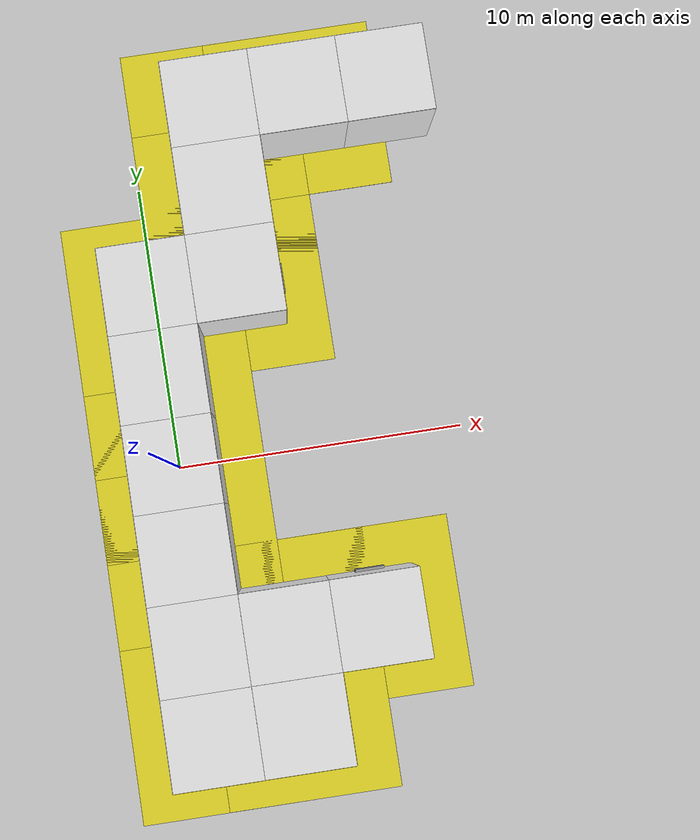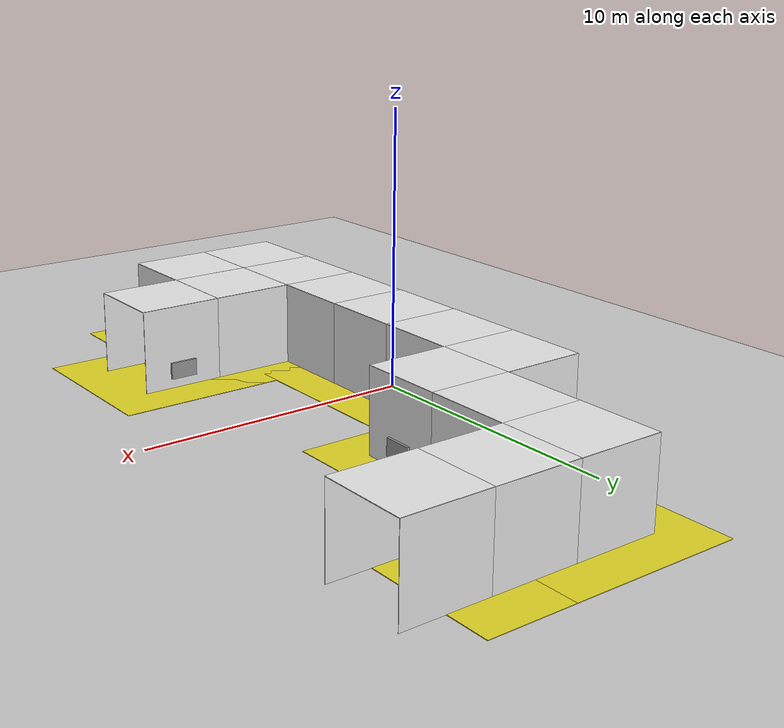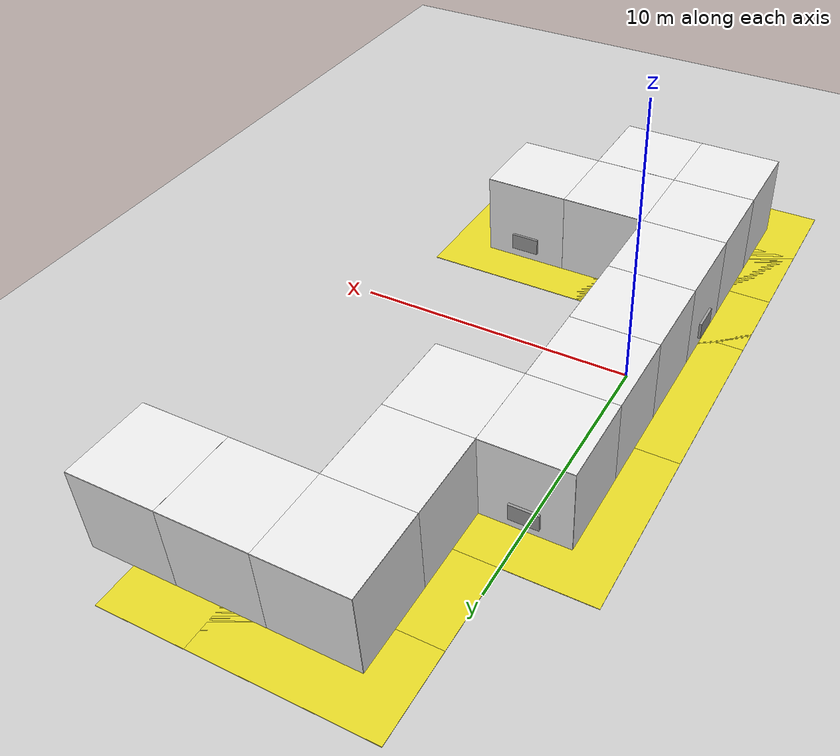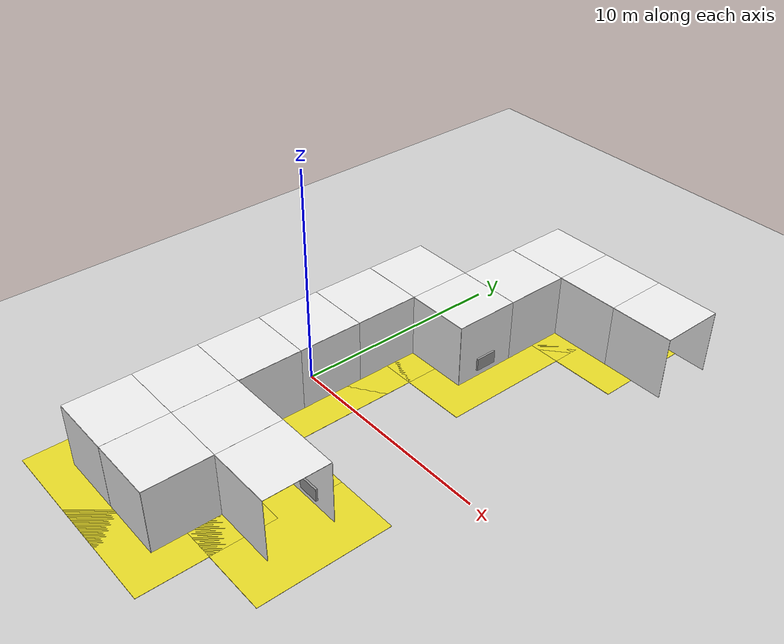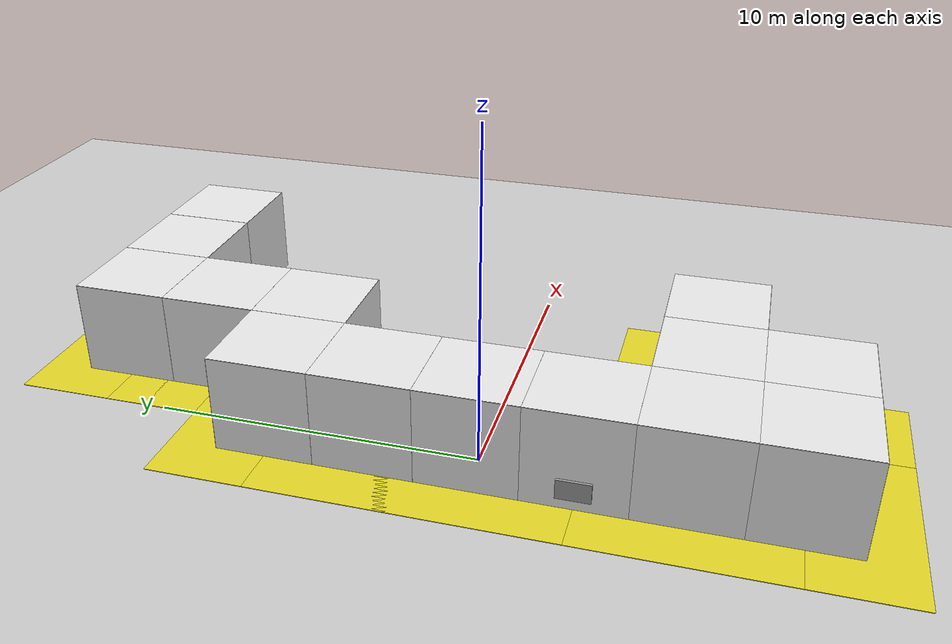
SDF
<sdf version="1.6">
 <world name="default">
  <model name="ground_plane">
   <static>1</static>
   <link name="link">
    <collision name="collision">
     <geometry><plane><normal>0 0 1</normal><size>200 200</size></plane></geometry>
     <surface><friction><ode><mu>100</mu><mu2>50</mu2></ode></friction></surface>
    </collision>
    <visual name="visual">
     <cast_shadows>0</cast_shadows>
     <geometry><plane><normal>0 0 1</normal><size>200 200</size></plane></geometry>
     <material>
      <script><uri>file://media/materials/scripts/gazebo.material</uri><name>Gazebo/Grey</name></script>
     </material>
    </visual>
   </link>
  </model>
  <model name="wall_back_0_0_0_0">
   <static>1</static>
   <pose>0.0 -1.5 1.5 0.0 0.0 0.0</pose>
   <link name="link">
    <collision name="collision"><geometry><box><size>3 0.02 3</size></box></geometry></collision>
    <visual name="visual">
     <material>
      <script><name>Gazebo/White</name><uri>file://media/materials/scripts/gazebo.material</uri></script>
     </material>
     <geometry><box><size>3 0.02 3</size></box></geometry>
    </visual>
   </link>
  </model>
  <model name="wall_right_0_0_0_0">
   <static>1</static>
   <pose>1.5 0.0 1.5 0.0 0.0 1.57</pose>
   <link name="link">
    <collision name="collision"><geometry><box><size>3 0.02 3</size></box></geometry></collision>
    <visual name="visual">
     <material>
      <script><name>Gazebo/White</name><uri>file://media/materials/scripts/gazebo.material</uri></script>
     </material>
     <geometry><box><size>3 0.02 3</size></box></geometry>
    </visual>
   </link>
  </model>
  <model name="wall_left_0_0_0_0">
   <static>1</static>
   <pose>-1.5 0.0 1.5 0.0 0.0 1.57</pose>
   <link name="link">
    <collision name="collision"><geometry><box><size>3 0.02 3</size></box></geometry></collision>
    <visual name="visual">
     <material>
      <script><name>Gazebo/White</name><uri>file://media/materials/scripts/gazebo.material</uri></script>
     </material>
     <geometry><box><size>3 0.02 3</size></box></geometry>
    </visual>
   </link>
  </model>
  <model name="wall_top_0_0_0_0">
   <static>1</static>
   <pose>0.0 0.0 3.0 1.57 0.0 0.0</pose>
   <link name="link">
    <collision name="collision"><geometry><box><size>3 0.02 3</size></box></geometry></collision>
    <visual name="visual">
     <material>
      <script><name>Gazebo/White</name><uri>file://media/materials/scripts/gazebo.material</uri></script>
     </material>
     <geometry><box><size>3 0.02 3</size></box></geometry>
    </visual>
   </link>
  </model>
  <model name="wall_bottom_0_0_0_0">
   <static>1</static>
   <link name="link">
    <collision name="collision"><geometry><box><size>6 6 0.02</size></box></geometry></collision>
    <visual name="visual">
     <material>
      <script><name>Gazebo/Yellow</name><uri>file://media/materials/scripts/gazebo.material</uri></script>
     </material>
     <geometry><box><size>6 6 0.02</size></box></geometry>
    </visual>
   </link>
  </model>
  <model name="wall_right_0_1_0_1">
   <static>1</static>
   <pose>1.5 3.0 1.5 0.0 0.0 1.57</pose>
   <link name="link">
    <collision name="collision"><geometry><box><size>3 0.02 3</size></box></geometry></collision>
    <visual name="visual">
     <material>
      <script><name>Gazebo/White</name><uri>file://media/materials/scripts/gazebo.material</uri></script>
     </material>
     <geometry><box><size>3 0.02 3</size></box></geometry>
    </visual>
   </link>
  </model>
  <model name="wall_left_0_1_0_1">
   <static>1</static>
   <pose>-1.5 3.0 1.5 0.0 0.0 1.57</pose>
   <link name="link">
    <collision name="collision"><geometry><box><size>3 0.02 3</size></box></geometry></collision>
    <visual name="visual">
     <material>
      <script><name>Gazebo/White</name><uri>file://media/materials/scripts/gazebo.material</uri></script>
     </material>
     <geometry><box><size>3 0.02 3</size></box></geometry>
    </visual>
   </link>
  </model>
  <model name="wall_top_0_1_0_1">
   <static>1</static>
   <pose>0.0 3.0 3.0 1.57 0.0 0.0</pose>
   <link name="link">
    <collision name="collision"><geometry><box><size>3 0.02 3</size></box></geometry></collision>
    <visual name="visual">
     <material>
      <script><name>Gazebo/White</name><uri>file://media/materials/scripts/gazebo.material</uri></script>
     </material>
     <geometry><box><size>3 0.02 3</size></box></geometry>
    </visual>
   </link>
  </model>
  <model name="wall_bottom_0_1_0_1">
   <static>1</static>
   <pose>0.0 3.0 0.0 0.0 0.0 0.0</pose>
   <link name="link">
    <collision name="collision"><geometry><box><size>6 6 0.02</size></box></geometry></collision>
    <visual name="visual">
     <material>
      <script><name>Gazebo/Yellow</name><uri>file://media/materials/scripts/gazebo.material</uri></script>
     </material>
     <geometry><box><size>6 6 0.02</size></box></geometry>
    </visual>
   </link>
  </model>
  <model name="wall_front_0_2_0_2">
   <static>1</static>
   <pose>0.0 7.5 1.5 0.0 0.0 0.0</pose>
   <link name="link">
    <collision name="collision"><geometry><box><size>3 0.02 3</size></box></geometry></collision>
    <visual name="visual">
     <material>
      <script><name>Gazebo/White</name><uri>file://media/materials/scripts/gazebo.material</uri></script>
     </material>
     <geometry><box><size>3 0.02 3</size></box></geometry>
    </visual>
   </link>
  </model>
  <model name="wall_left_0_2_0_2">
   <static>1</static>
   <pose>-1.5 6.0 1.5 0.0 0.0 1.57</pose>
   <link name="link">
    <collision name="collision"><geometry><box><size>3 0.02 3</size></box></geometry></collision>
    <visual name="visual">
     <material>
      <script><name>Gazebo/White</name><uri>file://media/materials/scripts/gazebo.material</uri></script>
     </material>
     <geometry><box><size>3 0.02 3</size></box></geometry>
    </visual>
   </link>
  </model>
  <model name="wall_top_0_2_0_2">
   <static>1</static>
   <pose>0.0 6.0 3.0 1.57 0.0 0.0</pose>
   <link name="link">
    <collision name="collision"><geometry><box><size>3 0.02 3</size></box></geometry></collision>
    <visual name="visual">
     <material>
      <script><name>Gazebo/White</name><uri>file://media/materials/scripts/gazebo.material</uri></script>
     </material>
     <geometry><box><size>3 0.02 3</size></box></geometry>
    </visual>
   </link>
  </model>
  <model name="wall_bottom_0_2_0_2">
   <static>1</static>
   <pose>0.0 6.0 0.0 0.0 0.0 0.0</pose>
   <link name="link">
    <collision name="collision"><geometry><box><size>6 6 0.02</size></box></geometry></collision>
    <visual name="visual">
     <material>
      <script><name>Gazebo/Yellow</name><uri>file://media/materials/scripts/gazebo.material</uri></script>
     </material>
     <geometry><box><size>6 6 0.02</size></box></geometry>
    </visual>
   </link>
  </model>
  <model name="panel_0_2_0_2">
   <static>1</static>
   <pose>0.0 7.5 0.66 0.0 0.0 1.57</pose>
   <link name="link">
    <collision name="collision"><geometry><box><size>0.2 1 0.6</size></box></geometry></collision>
    <visual name="visual">
     <material>
      <script><name>Gazebo/Grey</name><uri>file://media/materials/scripts/gazebo.material</uri></script>
     </material>
     <geometry><box><size>0.2 1 0.6</size></box></geometry>
    </visual>
   </link>
  </model>
  <model name="wall_front_1_2_0_3">
   <static>1</static>
   <pose>4.5 6.0 1.5 0.0 0.0 -1.57</pose>
   <link name="link">
    <collision name="collision"><geometry><box><size>3 0.02 3</size></box></geometry></collision>
    <visual name="visual">
     <material>
      <script><name>Gazebo/White</name><uri>file://media/materials/scripts/gazebo.material</uri></script>
     </material>
     <geometry><box><size>3 0.02 3</size></box></geometry>
    </visual>
   </link>
  </model>
  <model name="wall_right_1_2_0_3">
   <static>1</static>
   <pose>3.0 4.5 1.5 0.0 0.0 0.0</pose>
   <link name="link">
    <collision name="collision"><geometry><box><size>3 0.02 3</size></box></geometry></collision>
    <visual name="visual">
     <material>
      <script><name>Gazebo/White</name><uri>file://media/materials/scripts/gazebo.material</uri></script>
     </material>
     <geometry><box><size>3 0.02 3</size></box></geometry>
    </visual>
   </link>
  </model>
  <model name="wall_top_1_2_0_3">
   <static>1</static>
   <pose>3.0 6.0 3.0 1.57 0.0 -1.57</pose>
   <link name="link">
    <collision name="collision"><geometry><box><size>3 0.02 3</size></box></geometry></collision>
    <visual name="visual">
     <material>
      <script><name>Gazebo/White</name><uri>file://media/materials/scripts/gazebo.material</uri></script>
     </material>
     <geometry><box><size>3 0.02 3</size></box></geometry>
    </visual>
   </link>
  </model>
  <model name="wall_bottom_1_2_0_3">
   <static>1</static>
   <pose>3.0 6.0 0.0 0.0 0.0 -1.57</pose>
   <link name="link">
    <collision name="collision"><geometry><box><size>6 6 0.02</size></box></geometry></collision>
    <visual name="visual">
     <material>
      <script><name>Gazebo/Yellow</name><uri>file://media/materials/scripts/gazebo.material</uri></script>
     </material>
     <geometry><box><size>6 6 0.02</size></box></geometry>
    </visual>
   </link>
  </model>
  <model name="panel_1_2_0_3">
   <static>1</static>
   <pose>4.5 6.0 0.66 0.0 0.0 0.0</pose>
   <link name="link">
    <collision name="collision"><geometry><box><size>0.2 1 0.6</size></box></geometry></collision>
    <visual name="visual">
     <material>
      <script><name>Gazebo/Grey</name><uri>file://media/materials/scripts/gazebo.material</uri></script>
     </material>
     <geometry><box><size>0.2 1 0.6</size></box></geometry>
    </visual>
   </link>
  </model>
  <model name="wall_right_1_3_0_1">
   <static>1</static>
   <pose>4.5 9.0 1.5 0.0 0.0 1.57</pose>
   <link name="link">
    <collision name="collision"><geometry><box><size>3 0.02 3</size></box></geometry></collision>
    <visual name="visual">
     <material>
      <script><name>Gazebo/White</name><uri>file://media/materials/scripts/gazebo.material</uri></script>
     </material>
     <geometry><box><size>3 0.02 3</size></box></geometry>
    </visual>
   </link>
  </model>
  <model name="wall_left_1_3_0_1">
   <static>1</static>
   <pose>1.5 9.0 1.5 0.0 0.0 1.57</pose>
   <link name="link">
    <collision name="collision"><geometry><box><size>3 0.02 3</size></box></geometry></collision>
    <visual name="visual">
     <material>
      <script><name>Gazebo/White</name><uri>file://media/materials/scripts/gazebo.material</uri></script>
     </material>
     <geometry><box><size>3 0.02 3</size></box></geometry>
    </visual>
   </link>
  </model>
  <model name="wall_top_1_3_0_1">
   <static>1</static>
   <pose>3.0 9.0 3.0 1.57 0.0 0.0</pose>
   <link name="link">
    <collision name="collision"><geometry><box><size>3 0.02 3</size></box></geometry></collision>
    <visual name="visual">
     <material>
      <script><name>Gazebo/White</name><uri>file://media/materials/scripts/gazebo.material</uri></script>
     </material>
     <geometry><box><size>3 0.02 3</size></box></geometry>
    </visual>
   </link>
  </model>
  <model name="wall_bottom_1_3_0_1">
   <static>1</static>
   <pose>3.0 9.0 0.0 0.0 0.0 0.0</pose>
   <link name="link">
    <collision name="collision"><geometry><box><size>6 6 0.02</size></box></geometry></collision>
    <visual name="visual">
     <material>
      <script><name>Gazebo/Yellow</name><uri>file://media/materials/scripts/gazebo.material</uri></script>
     </material>
     <geometry><box><size>6 6 0.02</size></box></geometry>
    </visual>
   </link>
  </model>
  <model name="wall_front_1_4_0_2">
   <static>1</static>
   <pose>3.0 13.5 1.5 0.0 0.0 0.0</pose>
   <link name="link">
    <collision name="collision"><geometry><box><size>3 0.02 3</size></box></geometry></collision>
    <visual name="visual">
     <material>
      <script><name>Gazebo/White</name><uri>file://media/materials/scripts/gazebo.material</uri></script>
     </material>
     <geometry><box><size>3 0.02 3</size></box></geometry>
    </visual>
   </link>
  </model>
  <model name="wall_left_1_4_0_2">
   <static>1</static>
   <pose>1.5 12.0 1.5 0.0 0.0 1.57</pose>
   <link name="link">
    <collision name="collision"><geometry><box><size>3 0.02 3</size></box></geometry></collision>
    <visual name="visual">
     <material>
      <script><name>Gazebo/White</name><uri>file://media/materials/scripts/gazebo.material</uri></script>
     </material>
     <geometry><box><size>3 0.02 3</size></box></geometry>
    </visual>
   </link>
  </model>
  <model name="wall_top_1_4_0_2">
   <static>1</static>
   <pose>3.0 12.0 3.0 1.57 0.0 0.0</pose>
   <link name="link">
    <collision name="collision"><geometry><box><size>3 0.02 3</size></box></geometry></collision>
    <visual name="visual">
     <material>
      <script><name>Gazebo/White</name><uri>file://media/materials/scripts/gazebo.material</uri></script>
     </material>
     <geometry><box><size>3 0.02 3</size></box></geometry>
    </visual>
   </link>
  </model>
  <model name="wall_bottom_1_4_0_2">
   <static>1</static>
   <pose>3.0 12.0 0.0 0.0 0.0 0.0</pose>
   <link name="link">
    <collision name="collision"><geometry><box><size>6 6 0.02</size></box></geometry></collision>
    <visual name="visual">
     <material>
      <script><name>Gazebo/Yellow</name><uri>file://media/materials/scripts/gazebo.material</uri></script>
     </material>
     <geometry><box><size>6 6 0.02</size></box></geometry>
    </visual>
   </link>
  </model>
  <model name="wall_right_2_4_0_1">
   <static>1</static>
   <pose>6.0 10.5 1.5 0.0 0.0 0.0</pose>
   <link name="link">
    <collision name="collision"><geometry><box><size>3 0.02 3</size></box></geometry></collision>
    <visual name="visual">
     <material>
      <script><name>Gazebo/White</name><uri>file://media/materials/scripts/gazebo.material</uri></script>
     </material>
     <geometry><box><size>3 0.02 3</size></box></geometry>
    </visual>
   </link>
  </model>
  <model name="wall_left_2_4_0_1">
   <static>1</static>
   <pose>6.0 13.5 1.5 0.0 0.0 0.0</pose>
   <link name="link">
    <collision name="collision"><geometry><box><size>3 0.02 3</size></box></geometry></collision>
    <visual name="visual">
     <material>
      <script><name>Gazebo/White</name><uri>file://media/materials/scripts/gazebo.material</uri></script>
     </material>
     <geometry><box><size>3 0.02 3</size></box></geometry>
    </visual>
   </link>
  </model>
  <model name="wall_top_2_4_0_1">
   <static>1</static>
   <pose>6.0 12.0 3.0 1.57 0.0 -1.57</pose>
   <link name="link">
    <collision name="collision"><geometry><box><size>3 0.02 3</size></box></geometry></collision>
    <visual name="visual">
     <material>
      <script><name>Gazebo/White</name><uri>file://media/materials/scripts/gazebo.material</uri></script>
     </material>
     <geometry><box><size>3 0.02 3</size></box></geometry>
    </visual>
   </link>
  </model>
  <model name="wall_bottom_2_4_0_1">
   <static>1</static>
   <pose>6.0 12.0 0.0 0.0 0.0 -1.57</pose>
   <link name="link">
    <collision name="collision"><geometry><box><size>6 6 0.02</size></box></geometry></collision>
    <visual name="visual">
     <material>
      <script><name>Gazebo/Yellow</name><uri>file://media/materials/scripts/gazebo.material</uri></script>
     </material>
     <geometry><box><size>6 6 0.02</size></box></geometry>
    </visual>
   </link>
  </model>
  <model name="wall_right_3_4_0_1">
   <static>1</static>
   <pose>9.0 10.5 1.5 0.0 0.0 0.0</pose>
   <link name="link">
    <collision name="collision"><geometry><box><size>3 0.02 3</size></box></geometry></collision>
    <visual name="visual">
     <material>
      <script><name>Gazebo/White</name><uri>file://media/materials/scripts/gazebo.material</uri></script>
     </material>
     <geometry><box><size>3 0.02 3</size></box></geometry>
    </visual>
   </link>
  </model>
  <model name="wall_left_3_4_0_1">
   <static>1</static>
   <pose>9.0 13.5 1.5 0.0 0.0 0.0</pose>
   <link name="link">
    <collision name="collision"><geometry><box><size>3 0.02 3</size></box></geometry></collision>
    <visual name="visual">
     <material>
      <script><name>Gazebo/White</name><uri>file://media/materials/scripts/gazebo.material</uri></script>
     </material>
     <geometry><box><size>3 0.02 3</size></box></geometry>
    </visual>
   </link>
  </model>
  <model name="wall_top_3_4_0_1">
   <static>1</static>
   <pose>9.0 12.0 3.0 1.57 0.0 -1.57</pose>
   <link name="link">
    <collision name="collision"><geometry><box><size>3 0.02 3</size></box></geometry></collision>
    <visual name="visual">
     <material>
      <script><name>Gazebo/White</name><uri>file://media/materials/scripts/gazebo.material</uri></script>
     </material>
     <geometry><box><size>3 0.02 3</size></box></geometry>
    </visual>
   </link>
  </model>
  <model name="wall_right_2_-2_0_1">
   <static>1</static>
   <pose>6.0 -4.5 1.5 0.0 0.0 3.14</pose>
   <link name="link">
    <collision name="collision"><geometry><box><size>3 0.02 3</size></box></geometry></collision>
    <visual name="visual">
     <material>
      <script><name>Gazebo/White</name><uri>file://media/materials/scripts/gazebo.material</uri></script>
     </material>
     <geometry><box><size>3 0.02 3</size></box></geometry>
    </visual>
   </link>
  </model>
  <model name="wall_left_2_-2_0_1">
   <static>1</static>
   <pose>6.0 -7.5 1.5 0.0 0.0 3.14</pose>
   <link name="link">
    <collision name="collision"><geometry><box><size>3 0.02 3</size></box></geometry></collision>
    <visual name="visual">
     <material>
      <script><name>Gazebo/White</name><uri>file://media/materials/scripts/gazebo.material</uri></script>
     </material>
     <geometry><box><size>3 0.02 3</size></box></geometry>
    </visual>
   </link>
  </model>
  <model name="wall_top_2_-2_0_1">
   <static>1</static>
   <pose>6.0 -6.0 3.0 1.57 0.0 1.57</pose>
   <link name="link">
    <collision name="collision"><geometry><box><size>3 0.02 3</size></box></geometry></collision>
    <visual name="visual">
     <material>
      <script><name>Gazebo/White</name><uri>file://media/materials/scripts/gazebo.material</uri></script>
     </material>
     <geometry><box><size>3 0.02 3</size></box></geometry>
    </visual>
   </link>
  </model>
  <model name="panel_2_-2_0_1">
   <static>1</static>
   <pose>6.0 -4.5 0.66 0.0 0.0 1.57</pose>
   <link name="link">
    <collision name="collision"><geometry><box><size>0.2 1 0.6</size></box></geometry></collision>
    <visual name="visual">
     <material>
      <script><name>Gazebo/Grey</name><uri>file://media/materials/scripts/gazebo.material</uri></script>
     </material>
     <geometry><box><size>0.2 1 0.6</size></box></geometry>
    </visual>
   </link>
  </model>
  <model name="wall_bottom_2_-2_0_1">
   <static>1</static>
   <pose>6.0 -6.0 0.0 0.0 0.0 1.57</pose>
   <link name="link">
    <collision name="collision"><geometry><box><size>6 6 0.02</size></box></geometry></collision>
    <visual name="visual">
     <material>
      <script><name>Gazebo/Yellow</name><uri>file://media/materials/scripts/gazebo.material</uri></script>
     </material>
     <geometry><box><size>6 6 0.02</size></box></geometry>
    </visual>
   </link>
  </model>
  <model name="wall_front_1_-2_0_3">
   <static>1</static>
   <pose>1.5 -6.0 1.5 0.0 0.0 1.57</pose>
   <link name="link">
    <collision name="collision"><geometry><box><size>3 0.02 3</size></box></geometry></collision>
    <visual name="visual">
     <material>
      <script><name>Gazebo/White</name><uri>file://media/materials/scripts/gazebo.material</uri></script>
     </material>
     <geometry><box><size>3 0.02 3</size></box></geometry>
    </visual>
   </link>
  </model>
  <model name="wall_right_1_-2_0_3">
   <static>1</static>
   <pose>3.0 -4.5 1.5 0.0 0.0 3.14</pose>
   <link name="link">
    <collision name="collision"><geometry><box><size>3 0.02 3</size></box></geometry></collision>
    <visual name="visual">
     <material>
      <script><name>Gazebo/White</name><uri>file://media/materials/scripts/gazebo.material</uri></script>
     </material>
     <geometry><box><size>3 0.02 3</size></box></geometry>
    </visual>
   </link>
  </model>
  <model name="wall_top_1_-2_0_3">
   <static>1</static>
   <pose>3.0 -6.0 3.0 1.57 0.0 1.57</pose>
   <link name="link">
    <collision name="collision"><geometry><box><size>3 0.02 3</size></box></geometry></collision>
    <visual name="visual">
     <material>
      <script><name>Gazebo/White</name><uri>file://media/materials/scripts/gazebo.material</uri></script>
     </material>
     <geometry><box><size>3 0.02 3</size></box></geometry>
    </visual>
   </link>
  </model>
  <model name="wall_bottom_1_-2_0_3">
   <static>1</static>
   <pose>3.0 -6.0 0.0 0.0 0.0 1.57</pose>
   <link name="link">
    <collision name="collision"><geometry><box><size>6 6 0.02</size></box></geometry></collision>
    <visual name="visual">
     <material>
      <script><name>Gazebo/Yellow</name><uri>file://media/materials/scripts/gazebo.material</uri></script>
     </material>
     <geometry><box><size>6 6 0.02</size></box></geometry>
    </visual>
   </link>
  </model>
  <model name="wall_front_1_-3_0_2">
   <static>1</static>
   <pose>3.0 -10.5 1.5 0.0 0.0 3.14</pose>
   <link name="link">
    <collision name="collision"><geometry><box><size>3 0.02 3</size></box></geometry></collision>
    <visual name="visual">
     <material>
      <script><name>Gazebo/White</name><uri>file://media/materials/scripts/gazebo.material</uri></script>
     </material>
     <geometry><box><size>3 0.02 3</size></box></geometry>
    </visual>
   </link>
  </model>
  <model name="wall_left_1_-3_0_2">
   <static>1</static>
   <pose>4.5 -9.0 1.5 0.0 0.0 4.71</pose>
   <link name="link">
    <collision name="collision"><geometry><box><size>3 0.02 3</size></box></geometry></collision>
    <visual name="visual">
     <material>
      <script><name>Gazebo/White</name><uri>file://media/materials/scripts/gazebo.material</uri></script>
     </material>
     <geometry><box><size>3 0.02 3</size></box></geometry>
    </visual>
   </link>
  </model>
  <model name="wall_top_1_-3_0_2">
   <static>1</static>
   <pose>3.0 -9.0 3.0 1.57 0.0 3.14</pose>
   <link name="link">
    <collision name="collision"><geometry><box><size>3 0.02 3</size></box></geometry></collision>
    <visual name="visual">
     <material>
      <script><name>Gazebo/White</name><uri>file://media/materials/scripts/gazebo.material</uri></script>
     </material>
     <geometry><box><size>3 0.02 3</size></box></geometry>
    </visual>
   </link>
  </model>
  <model name="wall_bottom_1_-3_0_2">
   <static>1</static>
   <pose>3.0 -9.0 0.0 0.0 0.0 3.14</pose>
   <link name="link">
    <collision name="collision"><geometry><box><size>6 6 0.02</size></box></geometry></collision>
    <visual name="visual">
     <material>
      <script><name>Gazebo/Yellow</name><uri>file://media/materials/scripts/gazebo.material</uri></script>
     </material>
     <geometry><box><size>6 6 0.02</size></box></geometry>
    </visual>
   </link>
  </model>
  <model name="wall_front_0_-3_0_2">
   <static>1</static>
   <pose>-1.5 -9.0 1.5 0.0 0.0 1.57</pose>
   <link name="link">
    <collision name="collision"><geometry><box><size>3 0.02 3</size></box></geometry></collision>
    <visual name="visual">
     <material>
      <script><name>Gazebo/White</name><uri>file://media/materials/scripts/gazebo.material</uri></script>
     </material>
     <geometry><box><size>3 0.02 3</size></box></geometry>
    </visual>
   </link>
  </model>
  <model name="wall_left_0_-3_0_2">
   <static>1</static>
   <pose>0.0 -10.5 1.5 0.0 0.0 3.14</pose>
   <link name="link">
    <collision name="collision"><geometry><box><size>3 0.02 3</size></box></geometry></collision>
    <visual name="visual">
     <material>
      <script><name>Gazebo/White</name><uri>file://media/materials/scripts/gazebo.material</uri></script>
     </material>
     <geometry><box><size>3 0.02 3</size></box></geometry>
    </visual>
   </link>
  </model>
  <model name="wall_top_0_-3_0_2">
   <static>1</static>
   <pose>0.0 -9.0 3.0 1.57 0.0 1.57</pose>
   <link name="link">
    <collision name="collision"><geometry><box><size>3 0.02 3</size></box></geometry></collision>
    <visual name="visual">
     <material>
      <script><name>Gazebo/White</name><uri>file://media/materials/scripts/gazebo.material</uri></script>
     </material>
     <geometry><box><size>3 0.02 3</size></box></geometry>
    </visual>
   </link>
  </model>
  <model name="wall_bottom_0_-3_0_2">
   <static>1</static>
   <pose>0.0 -9.0 0.0 0.0 0.0 1.57</pose>
   <link name="link">
    <collision name="collision"><geometry><box><size>6 6 0.02</size></box></geometry></collision>
    <visual name="visual">
     <material>
      <script><name>Gazebo/Yellow</name><uri>file://media/materials/scripts/gazebo.material</uri></script>
     </material>
     <geometry><box><size>6 6 0.02</size></box></geometry>
    </visual>
   </link>
  </model>
  <model name="wall_right_0_-2_0_1">
   <static>1</static>
   <pose>1.5 -6.0 1.5 0.0 0.0 1.57</pose>
   <link name="link">
    <collision name="collision"><geometry><box><size>3 0.02 3</size></box></geometry></collision>
    <visual name="visual">
     <material>
      <script><name>Gazebo/White</name><uri>file://media/materials/scripts/gazebo.material</uri></script>
     </material>
     <geometry><box><size>3 0.02 3</size></box></geometry>
    </visual>
   </link>
  </model>
  <model name="wall_left_0_-2_0_1">
   <static>1</static>
   <pose>-1.5 -6.0 1.5 0.0 0.0 1.57</pose>
   <link name="link">
    <collision name="collision"><geometry><box><size>3 0.02 3</size></box></geometry></collision>
    <visual name="visual">
     <material>
      <script><name>Gazebo/White</name><uri>file://media/materials/scripts/gazebo.material</uri></script>
     </material>
     <geometry><box><size>3 0.02 3</size></box></geometry>
    </visual>
   </link>
  </model>
  <model name="wall_top_0_-2_0_1">
   <static>1</static>
   <pose>0.0 -6.0 3.0 1.57 0.0 0.0</pose>
   <link name="link">
    <collision name="collision"><geometry><box><size>3 0.02 3</size></box></geometry></collision>
    <visual name="visual">
     <material>
      <script><name>Gazebo/White</name><uri>file://media/materials/scripts/gazebo.material</uri></script>
     </material>
     <geometry><box><size>3 0.02 3</size></box></geometry>
    </visual>
   </link>
  </model>
  <model name="panel_0_-2_0_1">
   <static>1</static>
   <pose>1.5 -6.0 0.66 0.0 0.0 0.0</pose>
   <link name="link">
    <collision name="collision"><geometry><box><size>0.2 1 0.6</size></box></geometry></collision>
    <visual name="visual">
     <material>
      <script><name>Gazebo/Grey</name><uri>file://media/materials/scripts/gazebo.material</uri></script>
     </material>
     <geometry><box><size>0.2 1 0.6</size></box></geometry>
    </visual>
   </link>
  </model>
  <model name="wall_bottom_0_-2_0_1">
   <static>1</static>
   <pose>0.0 -6.0 0.0 0.0 0.0 0.0</pose>
   <link name="link">
    <collision name="collision"><geometry><box><size>6 6 0.02</size></box></geometry></collision>
    <visual name="visual">
     <material>
      <script><name>Gazebo/Yellow</name><uri>file://media/materials/scripts/gazebo.material</uri></script>
     </material>
     <geometry><box><size>6 6 0.02</size></box></geometry>
    </visual>
   </link>
  </model>
  <model name="wall_right_0_-1_0_1">
   <static>1</static>
   <pose>1.5 -3.0 1.5 0.0 0.0 1.57</pose>
   <link name="link">
    <collision name="collision"><geometry><box><size>3 0.02 3</size></box></geometry></collision>
    <visual name="visual">
     <material>
      <script><name>Gazebo/White</name><uri>file://media/materials/scripts/gazebo.material</uri></script>
     </material>
     <geometry><box><size>3 0.02 3</size></box></geometry>
    </visual>
   </link>
  </model>
  <model name="wall_left_0_-1_0_1">
   <static>1</static>
   <pose>-1.5 -3.0 1.5 0.0 0.0 1.57</pose>
   <link name="link">
    <collision name="collision"><geometry><box><size>3 0.02 3</size></box></geometry></collision>
    <visual name="visual">
     <material>
      <script><name>Gazebo/White</name><uri>file://media/materials/scripts/gazebo.material</uri></script>
     </material>
     <geometry><box><size>3 0.02 3</size></box></geometry>
    </visual>
   </link>
  </model>
  <model name="wall_top_0_-1_0_1">
   <static>1</static>
   <pose>0.0 -3.0 3.0 1.57 0.0 0.0</pose>
   <link name="link">
    <collision name="collision"><geometry><box><size>3 0.02 3</size></box></geometry></collision>
    <visual name="visual">
     <material>
      <script><name>Gazebo/White</name><uri>file://media/materials/scripts/gazebo.material</uri></script>
     </material>
     <geometry><box><size>3 0.02 3</size></box></geometry>
    </visual>
   </link>
  </model>
  <model name="wall_bottom_0_-1_0_1">
   <static>1</static>
   <pose>0.0 -3.0 0.0 0.0 0.0 0.0</pose>
   <link name="link">
    <collision name="collision"><geometry><box><size>6 6 0.02</size></box></geometry></collision>
    <visual name="visual">
     <material>
      <script><name>Gazebo/Yellow</name><uri>file://media/materials/scripts/gazebo.material</uri></script>
     </material>
     <geometry><box><size>6 6 0.02</size></box></geometry>
    </visual>
   </link>
  </model>
  <model name="panel_0_-1_0_1">
   <static>1</static>
   <pose>-1.5 -3.0 0.66 0.0 0.0 0.0</pose>
   <link name="link">
    <collision name="collision"><geometry><box><size>0.2 1 0.6</size></box></geometry></collision>
    <visual name="visual">
     <material>
      <script><name>Gazebo/Grey</name><uri>file://media/materials/scripts/gazebo.material</uri></script>
     </material>
     <geometry><box><size>0.2 1 0.6</size></box></geometry>
    </visual>
   </link>
  </model>
 </world>
</sdf>
